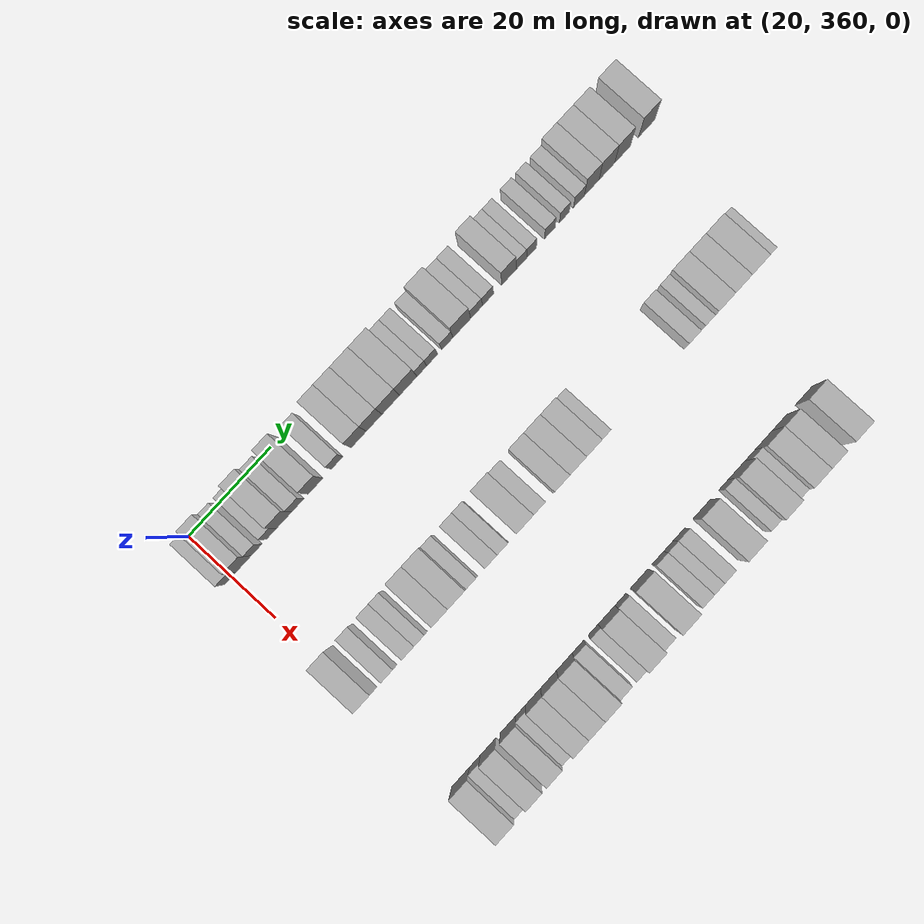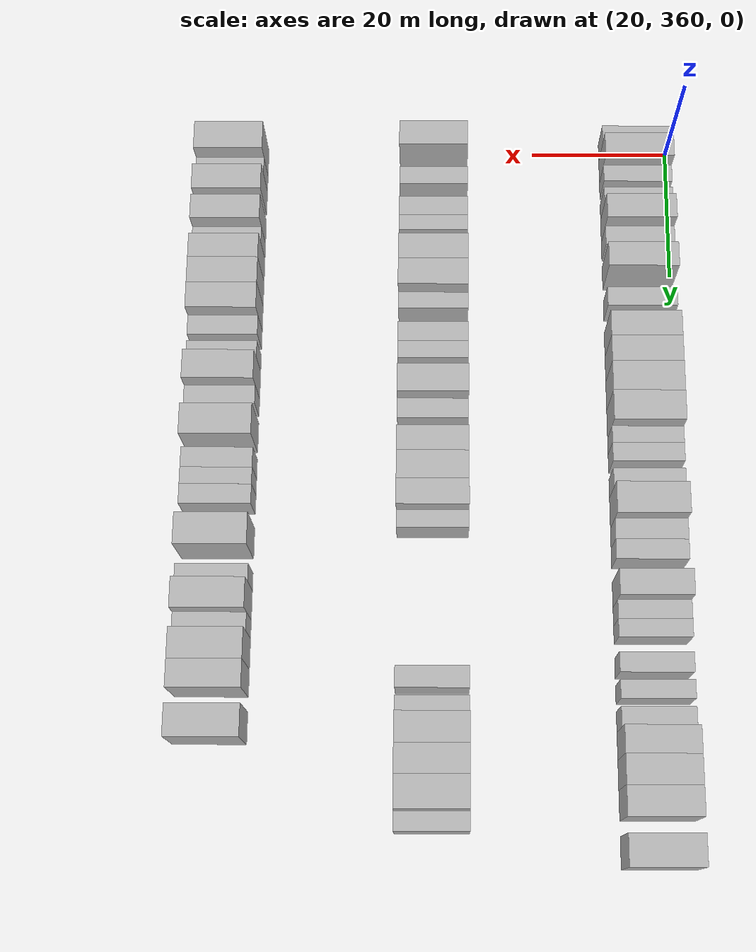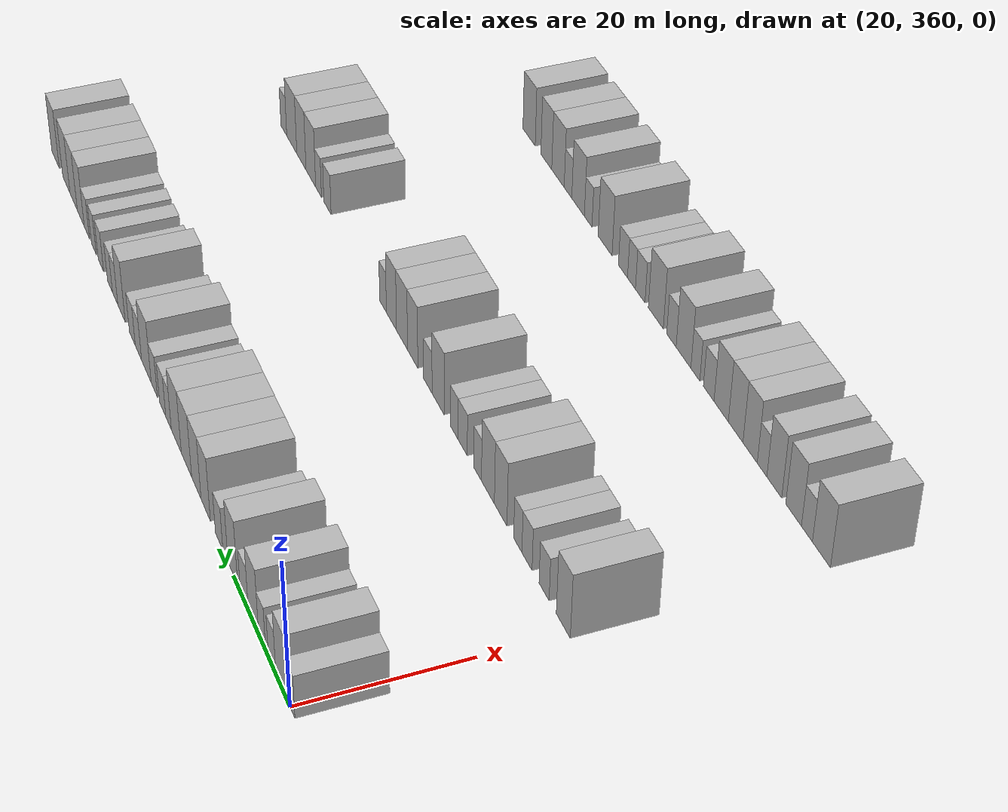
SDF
<sdf version="1.6">
 <world name="default">
  <model name="building_203">
   <static>1</static>
   <pose>25.0000 359.7290 0 0.000000 0.000000 0.000000</pose>
   <link name="link">
    <pose>0 0 3.00 0 0 0</pose>
    <collision name="collision"><geometry><box><size>10.0000 2.7967 6.0000</size></box></geometry></collision>
    <visual name="visual">
     <cast_shadows>0</cast_shadows>
     <geometry><box><size>10.0000 2.7967 6.0000</size></box></geometry>
     <material>
      <script>
       <uri>model://HANNAS_wall/materials/scripts</uri>
       <uri>model://HANNAS_wall/materials/textures</uri>
       <name>vrc/HANNAS_wall</name>
      </script>
     </material>
    </visual>
   </link>
  </model>
  <model name="building_204">
   <static>1</static>
   <pose>25.0000 362.9741 0 0.000000 0.000000 0.000000</pose>
   <link name="link">
    <pose>0 0 4.50 0 0 0</pose>
    <collision name="collision"><geometry><box><size>10.0000 3.6934 9.0000</size></box></geometry></collision>
    <visual name="visual">
     <cast_shadows>0</cast_shadows>
     <geometry><box><size>10.0000 3.6934 9.0000</size></box></geometry>
     <material>
      <script>
       <uri>model://HANNAS_wall/materials/scripts</uri>
       <uri>model://HANNAS_wall/materials/textures</uri>
       <name>vrc/HANNAS_wall</name>
      </script>
     </material>
    </visual>
   </link>
  </model>
  <model name="building_205">
   <static>1</static>
   <pose>25.0000 366.1081 0 0.000000 0.000000 0.000000</pose>
   <link name="link">
    <pose>0 0 3.00 0 0 0</pose>
    <collision name="collision"><geometry><box><size>10.0000 2.5745 6.0000</size></box></geometry></collision>
    <visual name="visual">
     <cast_shadows>0</cast_shadows>
     <geometry><box><size>10.0000 2.5745 6.0000</size></box></geometry>
     <material>
      <script>
       <uri>model://HANNAS_wall/materials/scripts</uri>
       <uri>model://HANNAS_wall/materials/textures</uri>
       <name>vrc/HANNAS_wall</name>
      </script>
     </material>
    </visual>
   </link>
  </model>
  <model name="building_206">
   <static>1</static>
   <pose>25.0000 369.6428 0 0.000000 0.000000 0.000000</pose>
   <link name="link">
    <pose>0 0 3.00 0 0 0</pose>
    <collision name="collision"><geometry><box><size>10.0000 2.4950 6.0000</size></box></geometry></collision>
    <visual name="visual">
     <cast_shadows>0</cast_shadows>
     <geometry><box><size>10.0000 2.4950 6.0000</size></box></geometry>
     <material>
      <script>
       <uri>model://HANNAS_wall/materials/scripts</uri>
       <uri>model://HANNAS_wall/materials/textures</uri>
       <name>vrc/HANNAS_wall</name>
      </script>
     </material>
    </visual>
   </link>
  </model>
  <model name="building_207">
   <static>1</static>
   <pose>25.0000 372.7470 0 0.000000 0.000000 0.000000</pose>
   <link name="link">
    <pose>0 0 4.50 0 0 0</pose>
    <collision name="collision"><geometry><box><size>10.0000 3.7133 9.0000</size></box></geometry></collision>
    <visual name="visual">
     <cast_shadows>0</cast_shadows>
     <geometry><box><size>10.0000 3.7133 9.0000</size></box></geometry>
     <material>
      <script>
       <uri>model://HANNAS_wall/materials/scripts</uri>
       <uri>model://HANNAS_wall/materials/textures</uri>
       <name>vrc/HANNAS_wall</name>
      </script>
     </material>
    </visual>
   </link>
  </model>
  <model name="building_208">
   <static>1</static>
   <pose>25.0000 376.0697 0 0.000000 0.000000 0.000000</pose>
   <link name="link">
    <pose>0 0 3.00 0 0 0</pose>
    <collision name="collision"><geometry><box><size>10.0000 2.9321 6.0000</size></box></geometry></collision>
    <visual name="visual">
     <cast_shadows>0</cast_shadows>
     <geometry><box><size>10.0000 2.9321 6.0000</size></box></geometry>
     <material>
      <script>
       <uri>model://HANNAS_wall/materials/scripts</uri>
       <uri>model://HANNAS_wall/materials/textures</uri>
       <name>vrc/HANNAS_wall</name>
      </script>
     </material>
    </visual>
   </link>
  </model>
  <model name="building_209">
   <static>1</static>
   <pose>25.0000 380.3569 0 0.000000 0.000000 0.000000</pose>
   <link name="link">
    <pose>0 0 4.50 0 0 0</pose>
    <collision name="collision"><geometry><box><size>10.0000 3.6423 9.0000</size></box></geometry></collision>
    <visual name="visual">
     <cast_shadows>0</cast_shadows>
     <geometry><box><size>10.0000 3.6423 9.0000</size></box></geometry>
     <material>
      <script>
       <uri>model://HANNAS_wall/materials/scripts</uri>
       <uri>model://HANNAS_wall/materials/textures</uri>
       <name>vrc/HANNAS_wall</name>
      </script>
     </material>
    </visual>
   </link>
  </model>
  <model name="building_210">
   <static>1</static>
   <pose>25.0000 385.6121 0 0.000000 0.000000 0.000000</pose>
   <link name="link">
    <pose>0 0 3.00 0 0 0</pose>
    <collision name="collision"><geometry><box><size>10.0000 2.8681 6.0000</size></box></geometry></collision>
    <visual name="visual">
     <cast_shadows>0</cast_shadows>
     <geometry><box><size>10.0000 2.8681 6.0000</size></box></geometry>
     <material>
      <script>
       <uri>model://HANNAS_wall/materials/scripts</uri>
       <uri>model://HANNAS_wall/materials/textures</uri>
       <name>vrc/HANNAS_wall</name>
      </script>
     </material>
    </visual>
   </link>
  </model>
  <model name="building_211">
   <static>1</static>
   <pose>25.0000 390.9091 0 0.000000 0.000000 0.000000</pose>
   <link name="link">
    <pose>0 0 4.50 0 0 0</pose>
    <collision name="collision"><geometry><box><size>10.0000 3.7258 9.0000</size></box></geometry></collision>
    <visual name="visual">
     <cast_shadows>0</cast_shadows>
     <geometry><box><size>10.0000 3.7258 9.0000</size></box></geometry>
     <material>
      <script>
       <uri>model://HANNAS_wall/materials/scripts</uri>
       <uri>model://HANNAS_wall/materials/textures</uri>
       <name>vrc/HANNAS_wall</name>
      </script>
     </material>
    </visual>
   </link>
  </model>
  <model name="building_212">
   <static>1</static>
   <pose>25.0000 394.6913 0 0.000000 0.000000 0.000000</pose>
   <link name="link">
    <pose>0 0 4.50 0 0 0</pose>
    <collision name="collision"><geometry><box><size>10.0000 3.8384 9.0000</size></box></geometry></collision>
    <visual name="visual">
     <cast_shadows>0</cast_shadows>
     <geometry><box><size>10.0000 3.8384 9.0000</size></box></geometry>
     <material>
      <script>
       <uri>model://HANNAS_wall/materials/scripts</uri>
       <uri>model://HANNAS_wall/materials/textures</uri>
       <name>vrc/HANNAS_wall</name>
      </script>
     </material>
    </visual>
   </link>
  </model>
  <model name="building_213">
   <static>1</static>
   <pose>25.0000 398.7701 0 0.000000 0.000000 0.000000</pose>
   <link name="link">
    <pose>0 0 4.50 0 0 0</pose>
    <collision name="collision"><geometry><box><size>10.0000 4.3193 9.0000</size></box></geometry></collision>
    <visual name="visual">
     <cast_shadows>0</cast_shadows>
     <geometry><box><size>10.0000 4.3193 9.0000</size></box></geometry>
     <material>
      <script>
       <uri>model://HANNAS_wall/materials/scripts</uri>
       <uri>model://HANNAS_wall/materials/textures</uri>
       <name>vrc/HANNAS_wall</name>
      </script>
     </material>
    </visual>
   </link>
  </model>
  <model name="building_214">
   <static>1</static>
   <pose>25.0000 403.0660 0 0.000000 0.000000 0.000000</pose>
   <link name="link">
    <pose>0 0 4.50 0 0 0</pose>
    <collision name="collision"><geometry><box><size>10.0000 4.2726 9.0000</size></box></geometry></collision>
    <visual name="visual">
     <cast_shadows>0</cast_shadows>
     <geometry><box><size>10.0000 4.2726 9.0000</size></box></geometry>
     <material>
      <script>
       <uri>model://HANNAS_wall/materials/scripts</uri>
       <uri>model://HANNAS_wall/materials/textures</uri>
       <name>vrc/HANNAS_wall</name>
      </script>
     </material>
    </visual>
   </link>
  </model>
  <model name="building_215">
   <static>1</static>
   <pose>25.0000 406.4164 0 0.000000 0.000000 0.000000</pose>
   <link name="link">
    <pose>0 0 3.00 0 0 0</pose>
    <collision name="collision"><geometry><box><size>10.0000 2.4283 6.0000</size></box></geometry></collision>
    <visual name="visual">
     <cast_shadows>0</cast_shadows>
     <geometry><box><size>10.0000 2.4283 6.0000</size></box></geometry>
     <material>
      <script>
       <uri>model://HANNAS_wall/materials/scripts</uri>
       <uri>model://HANNAS_wall/materials/textures</uri>
       <name>vrc/HANNAS_wall</name>
      </script>
     </material>
    </visual>
   </link>
  </model>
  <model name="building_216">
   <static>1</static>
   <pose>25.0000 408.9784 0 0.000000 0.000000 0.000000</pose>
   <link name="link">
    <pose>0 0 3.00 0 0 0</pose>
    <collision name="collision"><geometry><box><size>10.0000 2.6956 6.0000</size></box></geometry></collision>
    <visual name="visual">
     <cast_shadows>0</cast_shadows>
     <geometry><box><size>10.0000 2.6956 6.0000</size></box></geometry>
     <material>
      <script>
       <uri>model://HANNAS_wall/materials/scripts</uri>
       <uri>model://HANNAS_wall/materials/textures</uri>
       <name>vrc/HANNAS_wall</name>
      </script>
     </material>
    </visual>
   </link>
  </model>
  <model name="building_217">
   <static>1</static>
   <pose>25.0000 412.7124 0 0.000000 0.000000 0.000000</pose>
   <link name="link">
    <pose>0 0 3.00 0 0 0</pose>
    <collision name="collision"><geometry><box><size>10.0000 2.7725 6.0000</size></box></geometry></collision>
    <visual name="visual">
     <cast_shadows>0</cast_shadows>
     <geometry><box><size>10.0000 2.7725 6.0000</size></box></geometry>
     <material>
      <script>
       <uri>model://HANNAS_wall/materials/scripts</uri>
       <uri>model://HANNAS_wall/materials/textures</uri>
       <name>vrc/HANNAS_wall</name>
      </script>
     </material>
    </visual>
   </link>
  </model>
  <model name="building_218">
   <static>1</static>
   <pose>25.0000 416.3007 0 0.000000 0.000000 0.000000</pose>
   <link name="link">
    <pose>0 0 4.50 0 0 0</pose>
    <collision name="collision"><geometry><box><size>10.0000 4.4041 9.0000</size></box></geometry></collision>
    <visual name="visual">
     <cast_shadows>0</cast_shadows>
     <geometry><box><size>10.0000 4.4041 9.0000</size></box></geometry>
     <material>
      <script>
       <uri>model://HANNAS_wall/materials/scripts</uri>
       <uri>model://HANNAS_wall/materials/textures</uri>
       <name>vrc/HANNAS_wall</name>
      </script>
     </material>
    </visual>
   </link>
  </model>
  <model name="building_219">
   <static>1</static>
   <pose>25.0000 419.9693 0 0.000000 0.000000 0.000000</pose>
   <link name="link">
    <pose>0 0 3.00 0 0 0</pose>
    <collision name="collision"><geometry><box><size>10.0000 2.9331 6.0000</size></box></geometry></collision>
    <visual name="visual">
     <cast_shadows>0</cast_shadows>
     <geometry><box><size>10.0000 2.9331 6.0000</size></box></geometry>
     <material>
      <script>
       <uri>model://HANNAS_wall/materials/scripts</uri>
       <uri>model://HANNAS_wall/materials/textures</uri>
       <name>vrc/HANNAS_wall</name>
      </script>
     </material>
    </visual>
   </link>
  </model>
  <model name="building_220">
   <static>1</static>
   <pose>25.0000 422.8304 0 0.000000 0.000000 0.000000</pose>
   <link name="link">
    <pose>0 0 3.00 0 0 0</pose>
    <collision name="collision"><geometry><box><size>10.0000 2.7890 6.0000</size></box></geometry></collision>
    <visual name="visual">
     <cast_shadows>0</cast_shadows>
     <geometry><box><size>10.0000 2.7890 6.0000</size></box></geometry>
     <material>
      <script>
       <uri>model://HANNAS_wall/materials/scripts</uri>
       <uri>model://HANNAS_wall/materials/textures</uri>
       <name>vrc/HANNAS_wall</name>
      </script>
     </material>
    </visual>
   </link>
  </model>
  <model name="building_221">
   <static>1</static>
   <pose>25.0000 428.0269 0 0.000000 0.000000 0.000000</pose>
   <link name="link">
    <pose>0 0 4.50 0 0 0</pose>
    <collision name="collision"><geometry><box><size>10.0000 3.6039 9.0000</size></box></geometry></collision>
    <visual name="visual">
     <cast_shadows>0</cast_shadows>
     <geometry><box><size>10.0000 3.6039 9.0000</size></box></geometry>
     <material>
      <script>
       <uri>model://HANNAS_wall/materials/scripts</uri>
       <uri>model://HANNAS_wall/materials/textures</uri>
       <name>vrc/HANNAS_wall</name>
      </script>
     </material>
    </visual>
   </link>
  </model>
  <model name="building_222">
   <static>1</static>
   <pose>25.0000 431.1437 0 0.000000 0.000000 0.000000</pose>
   <link name="link">
    <pose>0 0 3.00 0 0 0</pose>
    <collision name="collision"><geometry><box><size>10.0000 2.6299 6.0000</size></box></geometry></collision>
    <visual name="visual">
     <cast_shadows>0</cast_shadows>
     <geometry><box><size>10.0000 2.6299 6.0000</size></box></geometry>
     <material>
      <script>
       <uri>model://HANNAS_wall/materials/scripts</uri>
       <uri>model://HANNAS_wall/materials/textures</uri>
       <name>vrc/HANNAS_wall</name>
      </script>
     </material>
    </visual>
   </link>
  </model>
  <model name="building_223">
   <static>1</static>
   <pose>25.0000 433.6908 0 0.000000 0.000000 0.000000</pose>
   <link name="link">
    <pose>0 0 3.00 0 0 0</pose>
    <collision name="collision"><geometry><box><size>10.0000 2.4642 6.0000</size></box></geometry></collision>
    <visual name="visual">
     <cast_shadows>0</cast_shadows>
     <geometry><box><size>10.0000 2.4642 6.0000</size></box></geometry>
     <material>
      <script>
       <uri>model://HANNAS_wall/materials/scripts</uri>
       <uri>model://HANNAS_wall/materials/textures</uri>
       <name>vrc/HANNAS_wall</name>
      </script>
     </material>
    </visual>
   </link>
  </model>
  <model name="building_224">
   <static>1</static>
   <pose>25.0000 438.2909 0 0.000000 0.000000 0.000000</pose>
   <link name="link">
    <pose>0 0 3.00 0 0 0</pose>
    <collision name="collision"><geometry><box><size>10.0000 2.7360 6.0000</size></box></geometry></collision>
    <visual name="visual">
     <cast_shadows>0</cast_shadows>
     <geometry><box><size>10.0000 2.7360 6.0000</size></box></geometry>
     <material>
      <script>
       <uri>model://HANNAS_wall/materials/scripts</uri>
       <uri>model://HANNAS_wall/materials/textures</uri>
       <name>vrc/HANNAS_wall</name>
      </script>
     </material>
    </visual>
   </link>
  </model>
  <model name="building_225">
   <static>1</static>
   <pose>25.0000 441.9205 0 0.000000 0.000000 0.000000</pose>
   <link name="link">
    <pose>0 0 3.00 0 0 0</pose>
    <collision name="collision"><geometry><box><size>10.0000 2.5232 6.0000</size></box></geometry></collision>
    <visual name="visual">
     <cast_shadows>0</cast_shadows>
     <geometry><box><size>10.0000 2.5232 6.0000</size></box></geometry>
     <material>
      <script>
       <uri>model://HANNAS_wall/materials/scripts</uri>
       <uri>model://HANNAS_wall/materials/textures</uri>
       <name>vrc/HANNAS_wall</name>
      </script>
     </material>
    </visual>
   </link>
  </model>
  <model name="building_226">
   <static>1</static>
   <pose>25.0000 445.5690 0 0.000000 0.000000 0.000000</pose>
   <link name="link">
    <pose>0 0 3.00 0 0 0</pose>
    <collision name="collision"><geometry><box><size>10.0000 2.7739 6.0000</size></box></geometry></collision>
    <visual name="visual">
     <cast_shadows>0</cast_shadows>
     <geometry><box><size>10.0000 2.7739 6.0000</size></box></geometry>
     <material>
      <script>
       <uri>model://HANNAS_wall/materials/scripts</uri>
       <uri>model://HANNAS_wall/materials/textures</uri>
       <name>vrc/HANNAS_wall</name>
      </script>
     </material>
    </visual>
   </link>
  </model>
  <model name="building_227">
   <static>1</static>
   <pose>25.0000 448.8066 0 0.000000 0.000000 0.000000</pose>
   <link name="link">
    <pose>0 0 4.50 0 0 0</pose>
    <collision name="collision"><geometry><box><size>10.0000 3.7014 9.0000</size></box></geometry></collision>
    <visual name="visual">
     <cast_shadows>0</cast_shadows>
     <geometry><box><size>10.0000 3.7014 9.0000</size></box></geometry>
     <material>
      <script>
       <uri>model://HANNAS_wall/materials/scripts</uri>
       <uri>model://HANNAS_wall/materials/textures</uri>
       <name>vrc/HANNAS_wall</name>
      </script>
     </material>
    </visual>
   </link>
  </model>
  <model name="building_228">
   <static>1</static>
   <pose>25.0000 452.6434 0 0.000000 0.000000 0.000000</pose>
   <link name="link">
    <pose>0 0 4.50 0 0 0</pose>
    <collision name="collision"><geometry><box><size>10.0000 3.9721 9.0000</size></box></geometry></collision>
    <visual name="visual">
     <cast_shadows>0</cast_shadows>
     <geometry><box><size>10.0000 3.9721 9.0000</size></box></geometry>
     <material>
      <script>
       <uri>model://HANNAS_wall/materials/scripts</uri>
       <uri>model://HANNAS_wall/materials/textures</uri>
       <name>vrc/HANNAS_wall</name>
      </script>
     </material>
    </visual>
   </link>
  </model>
  <model name="building_229">
   <static>1</static>
   <pose>25.0000 456.6447 0 0.000000 0.000000 0.000000</pose>
   <link name="link">
    <pose>0 0 4.50 0 0 0</pose>
    <collision name="collision"><geometry><box><size>10.0000 4.0306 9.0000</size></box></geometry></collision>
    <visual name="visual">
     <cast_shadows>0</cast_shadows>
     <geometry><box><size>10.0000 4.0306 9.0000</size></box></geometry>
     <material>
      <script>
       <uri>model://HANNAS_wall/materials/scripts</uri>
       <uri>model://HANNAS_wall/materials/textures</uri>
       <name>vrc/HANNAS_wall</name>
      </script>
     </material>
    </visual>
   </link>
  </model>
  <model name="building_230">
   <static>1</static>
   <pose>25.0000 462.7852 0 0.000000 0.000000 0.000000</pose>
   <link name="link">
    <pose>0 0 4.50 0 0 0</pose>
    <collision name="collision"><geometry><box><size>10.0000 4.2503 9.0000</size></box></geometry></collision>
    <visual name="visual">
     <cast_shadows>0</cast_shadows>
     <geometry><box><size>10.0000 4.2503 9.0000</size></box></geometry>
     <material>
      <script>
       <uri>model://HANNAS_wall/materials/scripts</uri>
       <uri>model://HANNAS_wall/materials/textures</uri>
       <name>vrc/HANNAS_wall</name>
      </script>
     </material>
    </visual>
   </link>
  </model>
  <model name="building_430">
   <static>1</static>
   <pose>55.0000 361.1598 0 0.000000 0.000000 0.000000</pose>
   <link name="link">
    <pose>0 0 4.50 0 0 0</pose>
    <collision name="collision"><geometry><box><size>10.0000 3.8398 9.0000</size></box></geometry></collision>
    <visual name="visual">
     <cast_shadows>0</cast_shadows>
     <geometry><box><size>10.0000 3.8398 9.0000</size></box></geometry>
     <material>
      <script>
       <uri>model://HANNAS_wall/materials/scripts</uri>
       <uri>model://HANNAS_wall/materials/textures</uri>
       <name>vrc/HANNAS_wall</name>
      </script>
     </material>
    </visual>
   </link>
  </model>
  <model name="building_431">
   <static>1</static>
   <pose>55.0000 366.4980 0 0.000000 0.000000 0.000000</pose>
   <link name="link">
    <pose>0 0 3.00 0 0 0</pose>
    <collision name="collision"><geometry><box><size>10.0000 2.8366 6.0000</size></box></geometry></collision>
    <visual name="visual">
     <cast_shadows>0</cast_shadows>
     <geometry><box><size>10.0000 2.8366 6.0000</size></box></geometry>
     <material>
      <script>
       <uri>model://HANNAS_wall/materials/scripts</uri>
       <uri>model://HANNAS_wall/materials/textures</uri>
       <name>vrc/HANNAS_wall</name>
      </script>
     </material>
    </visual>
   </link>
  </model>
  <model name="building_432">
   <static>1</static>
   <pose>55.0000 371.3873 0 0.000000 0.000000 0.000000</pose>
   <link name="link">
    <pose>0 0 3.00 0 0 0</pose>
    <collision name="collision"><geometry><box><size>10.0000 2.9420 6.0000</size></box></geometry></collision>
    <visual name="visual">
     <cast_shadows>0</cast_shadows>
     <geometry><box><size>10.0000 2.9420 6.0000</size></box></geometry>
     <material>
      <script>
       <uri>model://HANNAS_wall/materials/scripts</uri>
       <uri>model://HANNAS_wall/materials/textures</uri>
       <name>vrc/HANNAS_wall</name>
      </script>
     </material>
    </visual>
   </link>
  </model>
  <model name="building_433">
   <static>1</static>
   <pose>55.0000 374.0727 0 0.000000 0.000000 0.000000</pose>
   <link name="link">
    <pose>0 0 3.00 0 0 0</pose>
    <collision name="collision"><geometry><box><size>10.0000 2.4288 6.0000</size></box></geometry></collision>
    <visual name="visual">
     <cast_shadows>0</cast_shadows>
     <geometry><box><size>10.0000 2.4288 6.0000</size></box></geometry>
     <material>
      <script>
       <uri>model://HANNAS_wall/materials/scripts</uri>
       <uri>model://HANNAS_wall/materials/textures</uri>
       <name>vrc/HANNAS_wall</name>
      </script>
     </material>
    </visual>
   </link>
  </model>
  <model name="building_434">
   <static>1</static>
   <pose>55.0000 379.1907 0 0.000000 0.000000 0.000000</pose>
   <link name="link">
    <pose>0 0 4.50 0 0 0</pose>
    <collision name="collision"><geometry><box><size>10.0000 3.8073 9.0000</size></box></geometry></collision>
    <visual name="visual">
     <cast_shadows>0</cast_shadows>
     <geometry><box><size>10.0000 3.8073 9.0000</size></box></geometry>
     <material>
      <script>
       <uri>model://HANNAS_wall/materials/scripts</uri>
       <uri>model://HANNAS_wall/materials/textures</uri>
       <name>vrc/HANNAS_wall</name>
      </script>
     </material>
    </visual>
   </link>
  </model>
  <model name="building_435">
   <static>1</static>
   <pose>55.0000 383.0965 0 0.000000 0.000000 0.000000</pose>
   <link name="link">
    <pose>0 0 4.50 0 0 0</pose>
    <collision name="collision"><geometry><box><size>10.0000 4.0043 9.0000</size></box></geometry></collision>
    <visual name="visual">
     <cast_shadows>0</cast_shadows>
     <geometry><box><size>10.0000 4.0043 9.0000</size></box></geometry>
     <material>
      <script>
       <uri>model://HANNAS_wall/materials/scripts</uri>
       <uri>model://HANNAS_wall/materials/textures</uri>
       <name>vrc/HANNAS_wall</name>
      </script>
     </material>
    </visual>
   </link>
  </model>
  <model name="building_436">
   <static>1</static>
   <pose>55.0000 386.3476 0 0.000000 0.000000 0.000000</pose>
   <link name="link">
    <pose>0 0 3.00 0 0 0</pose>
    <collision name="collision"><geometry><box><size>10.0000 2.4979 6.0000</size></box></geometry></collision>
    <visual name="visual">
     <cast_shadows>0</cast_shadows>
     <geometry><box><size>10.0000 2.4979 6.0000</size></box></geometry>
     <material>
      <script>
       <uri>model://HANNAS_wall/materials/scripts</uri>
       <uri>model://HANNAS_wall/materials/textures</uri>
       <name>vrc/HANNAS_wall</name>
      </script>
     </material>
    </visual>
   </link>
  </model>
  <model name="building_437">
   <static>1</static>
   <pose>55.0000 391.0682 0 0.000000 0.000000 0.000000</pose>
   <link name="link">
    <pose>0 0 3.00 0 0 0</pose>
    <collision name="collision"><geometry><box><size>10.0000 2.9433 6.0000</size></box></geometry></collision>
    <visual name="visual">
     <cast_shadows>0</cast_shadows>
     <geometry><box><size>10.0000 2.9433 6.0000</size></box></geometry>
     <material>
      <script>
       <uri>model://HANNAS_wall/materials/scripts</uri>
       <uri>model://HANNAS_wall/materials/textures</uri>
       <name>vrc/HANNAS_wall</name>
      </script>
     </material>
    </visual>
   </link>
  </model>
  <model name="building_438">
   <static>1</static>
   <pose>55.0000 393.8381 0 0.000000 0.000000 0.000000</pose>
   <link name="link">
    <pose>0 0 3.00 0 0 0</pose>
    <collision name="collision"><geometry><box><size>10.0000 2.5965 6.0000</size></box></geometry></collision>
    <visual name="visual">
     <cast_shadows>0</cast_shadows>
     <geometry><box><size>10.0000 2.5965 6.0000</size></box></geometry>
     <material>
      <script>
       <uri>model://HANNAS_wall/materials/scripts</uri>
       <uri>model://HANNAS_wall/materials/textures</uri>
       <name>vrc/HANNAS_wall</name>
      </script>
     </material>
    </visual>
   </link>
  </model>
  <model name="building_439">
   <static>1</static>
   <pose>55.0000 399.1673 0 0.000000 0.000000 0.000000</pose>
   <link name="link">
    <pose>0 0 4.50 0 0 0</pose>
    <collision name="collision"><geometry><box><size>10.0000 4.0617 9.0000</size></box></geometry></collision>
    <visual name="visual">
     <cast_shadows>0</cast_shadows>
     <geometry><box><size>10.0000 4.0617 9.0000</size></box></geometry>
     <material>
      <script>
       <uri>model://HANNAS_wall/materials/scripts</uri>
       <uri>model://HANNAS_wall/materials/textures</uri>
       <name>vrc/HANNAS_wall</name>
      </script>
     </material>
    </visual>
   </link>
  </model>
  <model name="building_440">
   <static>1</static>
   <pose>55.0000 402.6479 0 0.000000 0.000000 0.000000</pose>
   <link name="link">
    <pose>0 0 3.00 0 0 0</pose>
    <collision name="collision"><geometry><box><size>10.0000 2.8995 6.0000</size></box></geometry></collision>
    <visual name="visual">
     <cast_shadows>0</cast_shadows>
     <geometry><box><size>10.0000 2.8995 6.0000</size></box></geometry>
     <material>
      <script>
       <uri>model://HANNAS_wall/materials/scripts</uri>
       <uri>model://HANNAS_wall/materials/textures</uri>
       <name>vrc/HANNAS_wall</name>
      </script>
     </material>
    </visual>
   </link>
  </model>
  <model name="building_441">
   <static>1</static>
   <pose>55.0000 407.9139 0 0.000000 0.000000 0.000000</pose>
   <link name="link">
    <pose>0 0 4.50 0 0 0</pose>
    <collision name="collision"><geometry><box><size>10.0000 3.6325 9.0000</size></box></geometry></collision>
    <visual name="visual">
     <cast_shadows>0</cast_shadows>
     <geometry><box><size>10.0000 3.6325 9.0000</size></box></geometry>
     <material>
      <script>
       <uri>model://HANNAS_wall/materials/scripts</uri>
       <uri>model://HANNAS_wall/materials/textures</uri>
       <name>vrc/HANNAS_wall</name>
      </script>
     </material>
    </visual>
   </link>
  </model>
  <model name="building_442">
   <static>1</static>
   <pose>55.0000 411.7133 0 0.000000 0.000000 0.000000</pose>
   <link name="link">
    <pose>0 0 4.50 0 0 0</pose>
    <collision name="collision"><geometry><box><size>10.0000 3.9663 9.0000</size></box></geometry></collision>
    <visual name="visual">
     <cast_shadows>0</cast_shadows>
     <geometry><box><size>10.0000 3.9663 9.0000</size></box></geometry>
     <material>
      <script>
       <uri>model://HANNAS_wall/materials/scripts</uri>
       <uri>model://HANNAS_wall/materials/textures</uri>
       <name>vrc/HANNAS_wall</name>
      </script>
     </material>
    </visual>
   </link>
  </model>
  <model name="building_443">
   <static>1</static>
   <pose>55.0000 415.5369 0 0.000000 0.000000 0.000000</pose>
   <link name="link">
    <pose>0 0 4.50 0 0 0</pose>
    <collision name="collision"><geometry><box><size>10.0000 3.6808 9.0000</size></box></geometry></collision>
    <visual name="visual">
     <cast_shadows>0</cast_shadows>
     <geometry><box><size>10.0000 3.6808 9.0000</size></box></geometry>
     <material>
      <script>
       <uri>model://HANNAS_wall/materials/scripts</uri>
       <uri>model://HANNAS_wall/materials/textures</uri>
       <name>vrc/HANNAS_wall</name>
      </script>
     </material>
    </visual>
   </link>
  </model>
  <model name="building_444">
   <static>1</static>
   <pose>55.0000 418.6217 0 0.000000 0.000000 0.000000</pose>
   <link name="link">
    <pose>0 0 3.00 0 0 0</pose>
    <collision name="collision"><geometry><box><size>10.0000 2.4888 6.0000</size></box></geometry></collision>
    <visual name="visual">
     <cast_shadows>0</cast_shadows>
     <geometry><box><size>10.0000 2.4888 6.0000</size></box></geometry>
     <material>
      <script>
       <uri>model://HANNAS_wall/materials/scripts</uri>
       <uri>model://HANNAS_wall/materials/textures</uri>
       <name>vrc/HANNAS_wall</name>
      </script>
     </material>
    </visual>
   </link>
  </model>
  <model name="building_445">
   <static>1</static>
   <pose>55.0000 440.3185 0 0.000000 0.000000 0.000000</pose>
   <link name="link">
    <pose>0 0 3.00 0 0 0</pose>
    <collision name="collision"><geometry><box><size>10.0000 2.9683 6.0000</size></box></geometry></collision>
    <visual name="visual">
     <cast_shadows>0</cast_shadows>
     <geometry><box><size>10.0000 2.9683 6.0000</size></box></geometry>
     <material>
      <script>
       <uri>model://HANNAS_wall/materials/scripts</uri>
       <uri>model://HANNAS_wall/materials/textures</uri>
       <name>vrc/HANNAS_wall</name>
      </script>
     </material>
    </visual>
   </link>
  </model>
  <model name="building_446">
   <static>1</static>
   <pose>55.0000 444.0115 0 0.000000 0.000000 0.000000</pose>
   <link name="link">
    <pose>0 0 3.00 0 0 0</pose>
    <collision name="collision"><geometry><box><size>10.0000 2.4176 6.0000</size></box></geometry></collision>
    <visual name="visual">
     <cast_shadows>0</cast_shadows>
     <geometry><box><size>10.0000 2.4176 6.0000</size></box></geometry>
     <material>
      <script>
       <uri>model://HANNAS_wall/materials/scripts</uri>
       <uri>model://HANNAS_wall/materials/textures</uri>
       <name>vrc/HANNAS_wall</name>
      </script>
     </material>
    </visual>
   </link>
  </model>
  <model name="building_447">
   <static>1</static>
   <pose>55.0000 447.2730 0 0.000000 0.000000 0.000000</pose>
   <link name="link">
    <pose>0 0 4.50 0 0 0</pose>
    <collision name="collision"><geometry><box><size>10.0000 4.1054 9.0000</size></box></geometry></collision>
    <visual name="visual">
     <cast_shadows>0</cast_shadows>
     <geometry><box><size>10.0000 4.1054 9.0000</size></box></geometry>
     <material>
      <script>
       <uri>model://HANNAS_wall/materials/scripts</uri>
       <uri>model://HANNAS_wall/materials/textures</uri>
       <name>vrc/HANNAS_wall</name>
      </script>
     </material>
    </visual>
   </link>
  </model>
  <model name="building_448">
   <static>1</static>
   <pose>55.0000 451.3265 0 0.000000 0.000000 0.000000</pose>
   <link name="link">
    <pose>0 0 4.50 0 0 0</pose>
    <collision name="collision"><geometry><box><size>10.0000 4.0015 9.0000</size></box></geometry></collision>
    <visual name="visual">
     <cast_shadows>0</cast_shadows>
     <geometry><box><size>10.0000 4.0015 9.0000</size></box></geometry>
     <material>
      <script>
       <uri>model://HANNAS_wall/materials/scripts</uri>
       <uri>model://HANNAS_wall/materials/textures</uri>
       <name>vrc/HANNAS_wall</name>
      </script>
     </material>
    </visual>
   </link>
  </model>
  <model name="building_449">
   <static>1</static>
   <pose>55.0000 455.5490 0 0.000000 0.000000 0.000000</pose>
   <link name="link">
    <pose>0 0 4.50 0 0 0</pose>
    <collision name="collision"><geometry><box><size>10.0000 4.4434 9.0000</size></box></geometry></collision>
    <visual name="visual">
     <cast_shadows>0</cast_shadows>
     <geometry><box><size>10.0000 4.4434 9.0000</size></box></geometry>
     <material>
      <script>
       <uri>model://HANNAS_wall/materials/scripts</uri>
       <uri>model://HANNAS_wall/materials/textures</uri>
       <name>vrc/HANNAS_wall</name>
      </script>
     </material>
    </visual>
   </link>
  </model>
  <model name="building_450">
   <static>1</static>
   <pose>55.0000 459.0696 0 0.000000 0.000000 0.000000</pose>
   <link name="link">
    <pose>0 0 3.00 0 0 0</pose>
    <collision name="collision"><geometry><box><size>10.0000 2.5978 6.0000</size></box></geometry></collision>
    <visual name="visual">
     <cast_shadows>0</cast_shadows>
     <geometry><box><size>10.0000 2.5978 6.0000</size></box></geometry>
     <material>
      <script>
       <uri>model://HANNAS_wall/materials/scripts</uri>
       <uri>model://HANNAS_wall/materials/textures</uri>
       <name>vrc/HANNAS_wall</name>
      </script>
     </material>
    </visual>
   </link>
  </model>
  <model name="building_648">
   <static>1</static>
   <pose>85.0000 361.5884 0 0.000000 0.000000 0.000000</pose>
   <link name="link">
    <pose>0 0 4.50 0 0 0</pose>
    <collision name="collision"><geometry><box><size>10.0000 4.2495 9.0000</size></box></geometry></collision>
    <visual name="visual">
     <cast_shadows>0</cast_shadows>
     <geometry><box><size>10.0000 4.2495 9.0000</size></box></geometry>
     <material>
      <script>
       <uri>model://HANNAS_wall/materials/scripts</uri>
       <uri>model://HANNAS_wall/materials/textures</uri>
       <name>vrc/HANNAS_wall</name>
      </script>
     </material>
    </visual>
   </link>
  </model>
  <model name="building_649">
   <static>1</static>
   <pose>85.0000 365.0280 0 0.000000 0.000000 0.000000</pose>
   <link name="link">
    <pose>0 0 3.00 0 0 0</pose>
    <collision name="collision"><geometry><box><size>10.0000 2.6299 6.0000</size></box></geometry></collision>
    <visual name="visual">
     <cast_shadows>0</cast_shadows>
     <geometry><box><size>10.0000 2.6299 6.0000</size></box></geometry>
     <material>
      <script>
       <uri>model://HANNAS_wall/materials/scripts</uri>
       <uri>model://HANNAS_wall/materials/textures</uri>
       <name>vrc/HANNAS_wall</name>
      </script>
     </material>
    </visual>
   </link>
  </model>
  <model name="building_650">
   <static>1</static>
   <pose>85.0000 368.2587 0 0.000000 0.000000 0.000000</pose>
   <link name="link">
    <pose>0 0 4.50 0 0 0</pose>
    <collision name="collision"><geometry><box><size>10.0000 3.8315 9.0000</size></box></geometry></collision>
    <visual name="visual">
     <cast_shadows>0</cast_shadows>
     <geometry><box><size>10.0000 3.8315 9.0000</size></box></geometry>
     <material>
      <script>
       <uri>model://HANNAS_wall/materials/scripts</uri>
       <uri>model://HANNAS_wall/materials/textures</uri>
       <name>vrc/HANNAS_wall</name>
      </script>
     </material>
    </visual>
   </link>
  </model>
  <model name="building_651">
   <static>1</static>
   <pose>85.0000 373.0308 0 0.000000 0.000000 0.000000</pose>
   <link name="link">
    <pose>0 0 4.50 0 0 0</pose>
    <collision name="collision"><geometry><box><size>10.0000 3.7126 9.0000</size></box></geometry></collision>
    <visual name="visual">
     <cast_shadows>0</cast_shadows>
     <geometry><box><size>10.0000 3.7126 9.0000</size></box></geometry>
     <material>
      <script>
       <uri>model://HANNAS_wall/materials/scripts</uri>
       <uri>model://HANNAS_wall/materials/textures</uri>
       <name>vrc/HANNAS_wall</name>
      </script>
     </material>
    </visual>
   </link>
  </model>
  <model name="building_652">
   <static>1</static>
   <pose>85.0000 376.1083 0 0.000000 0.000000 0.000000</pose>
   <link name="link">
    <pose>0 0 3.00 0 0 0</pose>
    <collision name="collision"><geometry><box><size>10.0000 2.4425 6.0000</size></box></geometry></collision>
    <visual name="visual">
     <cast_shadows>0</cast_shadows>
     <geometry><box><size>10.0000 2.4425 6.0000</size></box></geometry>
     <material>
      <script>
       <uri>model://HANNAS_wall/materials/scripts</uri>
       <uri>model://HANNAS_wall/materials/textures</uri>
       <name>vrc/HANNAS_wall</name>
      </script>
     </material>
    </visual>
   </link>
  </model>
  <model name="building_653">
   <static>1</static>
   <pose>85.0000 379.1789 0 0.000000 0.000000 0.000000</pose>
   <link name="link">
    <pose>0 0 4.50 0 0 0</pose>
    <collision name="collision"><geometry><box><size>10.0000 3.6987 9.0000</size></box></geometry></collision>
    <visual name="visual">
     <cast_shadows>0</cast_shadows>
     <geometry><box><size>10.0000 3.6987 9.0000</size></box></geometry>
     <material>
      <script>
       <uri>model://HANNAS_wall/materials/scripts</uri>
       <uri>model://HANNAS_wall/materials/textures</uri>
       <name>vrc/HANNAS_wall</name>
      </script>
     </material>
    </visual>
   </link>
  </model>
  <model name="building_654">
   <static>1</static>
   <pose>85.0000 382.9599 0 0.000000 0.000000 0.000000</pose>
   <link name="link">
    <pose>0 0 4.50 0 0 0</pose>
    <collision name="collision"><geometry><box><size>10.0000 3.8633 9.0000</size></box></geometry></collision>
    <visual name="visual">
     <cast_shadows>0</cast_shadows>
     <geometry><box><size>10.0000 3.8633 9.0000</size></box></geometry>
     <material>
      <script>
       <uri>model://HANNAS_wall/materials/scripts</uri>
       <uri>model://HANNAS_wall/materials/textures</uri>
       <name>vrc/HANNAS_wall</name>
      </script>
     </material>
    </visual>
   </link>
  </model>
  <model name="building_655">
   <static>1</static>
   <pose>85.0000 386.8175 0 0.000000 0.000000 0.000000</pose>
   <link name="link">
    <pose>0 0 4.50 0 0 0</pose>
    <collision name="collision"><geometry><box><size>10.0000 3.8520 9.0000</size></box></geometry></collision>
    <visual name="visual">
     <cast_shadows>0</cast_shadows>
     <geometry><box><size>10.0000 3.8520 9.0000</size></box></geometry>
     <material>
      <script>
       <uri>model://HANNAS_wall/materials/scripts</uri>
       <uri>model://HANNAS_wall/materials/textures</uri>
       <name>vrc/HANNAS_wall</name>
      </script>
     </material>
    </visual>
   </link>
  </model>
  <model name="building_656">
   <static>1</static>
   <pose>85.0000 390.2006 0 0.000000 0.000000 0.000000</pose>
   <link name="link">
    <pose>0 0 3.00 0 0 0</pose>
    <collision name="collision"><geometry><box><size>10.0000 2.9140 6.0000</size></box></geometry></collision>
    <visual name="visual">
     <cast_shadows>0</cast_shadows>
     <geometry><box><size>10.0000 2.9140 6.0000</size></box></geometry>
     <material>
      <script>
       <uri>model://HANNAS_wall/materials/scripts</uri>
       <uri>model://HANNAS_wall/materials/textures</uri>
       <name>vrc/HANNAS_wall</name>
      </script>
     </material>
    </visual>
   </link>
  </model>
  <model name="building_657">
   <static>1</static>
   <pose>85.0000 393.8960 0 0.000000 0.000000 0.000000</pose>
   <link name="link">
    <pose>0 0 3.00 0 0 0</pose>
    <collision name="collision"><geometry><box><size>10.0000 2.4769 6.0000</size></box></geometry></collision>
    <visual name="visual">
     <cast_shadows>0</cast_shadows>
     <geometry><box><size>10.0000 2.4769 6.0000</size></box></geometry>
     <material>
      <script>
       <uri>model://HANNAS_wall/materials/scripts</uri>
       <uri>model://HANNAS_wall/materials/textures</uri>
       <name>vrc/HANNAS_wall</name>
      </script>
     </material>
    </visual>
   </link>
  </model>
  <model name="building_658">
   <static>1</static>
   <pose>85.0000 397.2303 0 0.000000 0.000000 0.000000</pose>
   <link name="link">
    <pose>0 0 4.50 0 0 0</pose>
    <collision name="collision"><geometry><box><size>10.0000 4.1917 9.0000</size></box></geometry></collision>
    <visual name="visual">
     <cast_shadows>0</cast_shadows>
     <geometry><box><size>10.0000 4.1917 9.0000</size></box></geometry>
     <material>
      <script>
       <uri>model://HANNAS_wall/materials/scripts</uri>
       <uri>model://HANNAS_wall/materials/textures</uri>
       <name>vrc/HANNAS_wall</name>
      </script>
     </material>
    </visual>
   </link>
  </model>
  <model name="building_659">
   <static>1</static>
   <pose>85.0000 400.6874 0 0.000000 0.000000 0.000000</pose>
   <link name="link">
    <pose>0 0 3.00 0 0 0</pose>
    <collision name="collision"><geometry><box><size>10.0000 2.7227 6.0000</size></box></geometry></collision>
    <visual name="visual">
     <cast_shadows>0</cast_shadows>
     <geometry><box><size>10.0000 2.7227 6.0000</size></box></geometry>
     <material>
      <script>
       <uri>model://HANNAS_wall/materials/scripts</uri>
       <uri>model://HANNAS_wall/materials/textures</uri>
       <name>vrc/HANNAS_wall</name>
      </script>
     </material>
    </visual>
   </link>
  </model>
  <model name="building_660">
   <static>1</static>
   <pose>85.0000 405.2562 0 0.000000 0.000000 0.000000</pose>
   <link name="link">
    <pose>0 0 4.50 0 0 0</pose>
    <collision name="collision"><geometry><box><size>10.0000 4.4148 9.0000</size></box></geometry></collision>
    <visual name="visual">
     <cast_shadows>0</cast_shadows>
     <geometry><box><size>10.0000 4.4148 9.0000</size></box></geometry>
     <material>
      <script>
       <uri>model://HANNAS_wall/materials/scripts</uri>
       <uri>model://HANNAS_wall/materials/textures</uri>
       <name>vrc/HANNAS_wall</name>
      </script>
     </material>
    </visual>
   </link>
  </model>
  <model name="building_661">
   <static>1</static>
   <pose>85.0000 409.9065 0 0.000000 0.000000 0.000000</pose>
   <link name="link">
    <pose>0 0 3.00 0 0 0</pose>
    <collision name="collision"><geometry><box><size>10.0000 2.8858 6.0000</size></box></geometry></collision>
    <visual name="visual">
     <cast_shadows>0</cast_shadows>
     <geometry><box><size>10.0000 2.8858 6.0000</size></box></geometry>
     <material>
      <script>
       <uri>model://HANNAS_wall/materials/scripts</uri>
       <uri>model://HANNAS_wall/materials/textures</uri>
       <name>vrc/HANNAS_wall</name>
      </script>
     </material>
    </visual>
   </link>
  </model>
  <model name="building_662">
   <static>1</static>
   <pose>85.0000 412.5642 0 0.000000 0.000000 0.000000</pose>
   <link name="link">
    <pose>0 0 3.00 0 0 0</pose>
    <collision name="collision"><geometry><box><size>10.0000 2.4298 6.0000</size></box></geometry></collision>
    <visual name="visual">
     <cast_shadows>0</cast_shadows>
     <geometry><box><size>10.0000 2.4298 6.0000</size></box></geometry>
     <material>
      <script>
       <uri>model://HANNAS_wall/materials/scripts</uri>
       <uri>model://HANNAS_wall/materials/textures</uri>
       <name>vrc/HANNAS_wall</name>
      </script>
     </material>
    </visual>
   </link>
  </model>
  <model name="building_663">
   <static>1</static>
   <pose>85.0000 415.1873 0 0.000000 0.000000 0.000000</pose>
   <link name="link">
    <pose>0 0 3.00 0 0 0</pose>
    <collision name="collision"><geometry><box><size>10.0000 2.8162 6.0000</size></box></geometry></collision>
    <visual name="visual">
     <cast_shadows>0</cast_shadows>
     <geometry><box><size>10.0000 2.8162 6.0000</size></box></geometry>
     <material>
      <script>
       <uri>model://HANNAS_wall/materials/scripts</uri>
       <uri>model://HANNAS_wall/materials/textures</uri>
       <name>vrc/HANNAS_wall</name>
      </script>
     </material>
    </visual>
   </link>
  </model>
  <model name="building_664">
   <static>1</static>
   <pose>85.0000 420.8163 0 0.000000 0.000000 0.000000</pose>
   <link name="link">
    <pose>0 0 4.50 0 0 0</pose>
    <collision name="collision"><geometry><box><size>10.0000 4.4418 9.0000</size></box></geometry></collision>
    <visual name="visual">
     <cast_shadows>0</cast_shadows>
     <geometry><box><size>10.0000 4.4418 9.0000</size></box></geometry>
     <material>
      <script>
       <uri>model://HANNAS_wall/materials/scripts</uri>
       <uri>model://HANNAS_wall/materials/textures</uri>
       <name>vrc/HANNAS_wall</name>
      </script>
     </material>
    </visual>
   </link>
  </model>
  <model name="building_665">
   <static>1</static>
   <pose>85.0000 426.2781 0 0.000000 0.000000 0.000000</pose>
   <link name="link">
    <pose>0 0 3.00 0 0 0</pose>
    <collision name="collision"><geometry><box><size>10.0000 2.4819 6.0000</size></box></geometry></collision>
    <visual name="visual">
     <cast_shadows>0</cast_shadows>
     <geometry><box><size>10.0000 2.4819 6.0000</size></box></geometry>
     <material>
      <script>
       <uri>model://HANNAS_wall/materials/scripts</uri>
       <uri>model://HANNAS_wall/materials/textures</uri>
       <name>vrc/HANNAS_wall</name>
      </script>
     </material>
    </visual>
   </link>
  </model>
  <model name="building_666">
   <static>1</static>
   <pose>85.0000 429.6097 0 0.000000 0.000000 0.000000</pose>
   <link name="link">
    <pose>0 0 4.50 0 0 0</pose>
    <collision name="collision"><geometry><box><size>10.0000 4.1812 9.0000</size></box></geometry></collision>
    <visual name="visual">
     <cast_shadows>0</cast_shadows>
     <geometry><box><size>10.0000 4.1812 9.0000</size></box></geometry>
     <material>
      <script>
       <uri>model://HANNAS_wall/materials/scripts</uri>
       <uri>model://HANNAS_wall/materials/textures</uri>
       <name>vrc/HANNAS_wall</name>
      </script>
     </material>
    </visual>
   </link>
  </model>
  <model name="building_667">
   <static>1</static>
   <pose>85.0000 432.9801 0 0.000000 0.000000 0.000000</pose>
   <link name="link">
    <pose>0 0 3.00 0 0 0</pose>
    <collision name="collision"><geometry><box><size>10.0000 2.5597 6.0000</size></box></geometry></collision>
    <visual name="visual">
     <cast_shadows>0</cast_shadows>
     <geometry><box><size>10.0000 2.5597 6.0000</size></box></geometry>
     <material>
      <script>
       <uri>model://HANNAS_wall/materials/scripts</uri>
       <uri>model://HANNAS_wall/materials/textures</uri>
       <name>vrc/HANNAS_wall</name>
      </script>
     </material>
    </visual>
   </link>
  </model>
  <model name="building_668">
   <static>1</static>
   <pose>85.0000 436.3890 0 0.000000 0.000000 0.000000</pose>
   <link name="link">
    <pose>0 0 4.50 0 0 0</pose>
    <collision name="collision"><geometry><box><size>10.0000 4.2580 9.0000</size></box></geometry></collision>
    <visual name="visual">
     <cast_shadows>0</cast_shadows>
     <geometry><box><size>10.0000 4.2580 9.0000</size></box></geometry>
     <material>
      <script>
       <uri>model://HANNAS_wall/materials/scripts</uri>
       <uri>model://HANNAS_wall/materials/textures</uri>
       <name>vrc/HANNAS_wall</name>
      </script>
     </material>
    </visual>
   </link>
  </model>
  <model name="building_669">
   <static>1</static>
   <pose>85.0000 440.4168 0 0.000000 0.000000 0.000000</pose>
   <link name="link">
    <pose>0 0 4.50 0 0 0</pose>
    <collision name="collision"><geometry><box><size>10.0000 3.7975 9.0000</size></box></geometry></collision>
    <visual name="visual">
     <cast_shadows>0</cast_shadows>
     <geometry><box><size>10.0000 3.7975 9.0000</size></box></geometry>
     <material>
      <script>
       <uri>model://HANNAS_wall/materials/scripts</uri>
       <uri>model://HANNAS_wall/materials/textures</uri>
       <name>vrc/HANNAS_wall</name>
      </script>
     </material>
    </visual>
   </link>
  </model>
  <model name="building_670">
   <static>1</static>
   <pose>85.0000 446.5102 0 0.000000 0.000000 0.000000</pose>
   <link name="link">
    <pose>0 0 4.50 0 0 0</pose>
    <collision name="collision"><geometry><box><size>10.0000 4.3893 9.0000</size></box></geometry></collision>
    <visual name="visual">
     <cast_shadows>0</cast_shadows>
     <geometry><box><size>10.0000 4.3893 9.0000</size></box></geometry>
     <material>
      <script>
       <uri>model://HANNAS_wall/materials/scripts</uri>
       <uri>model://HANNAS_wall/materials/textures</uri>
       <name>vrc/HANNAS_wall</name>
      </script>
     </material>
    </visual>
   </link>
  </model>
 </world>
</sdf>
